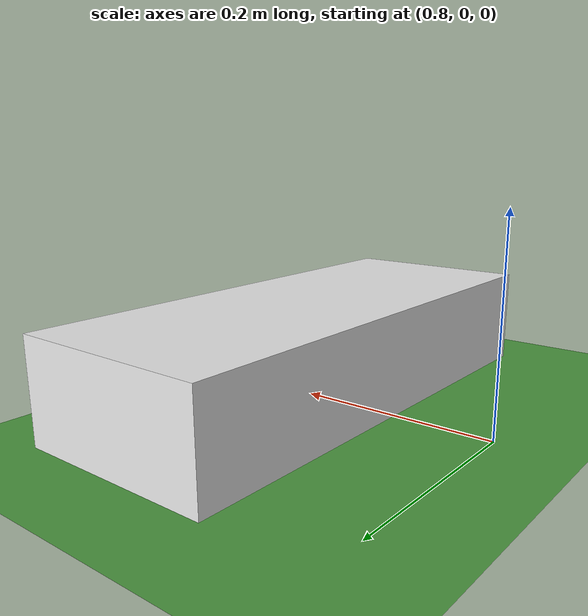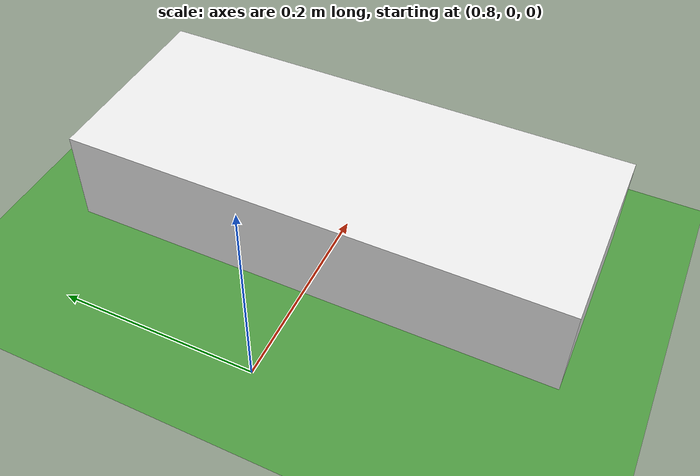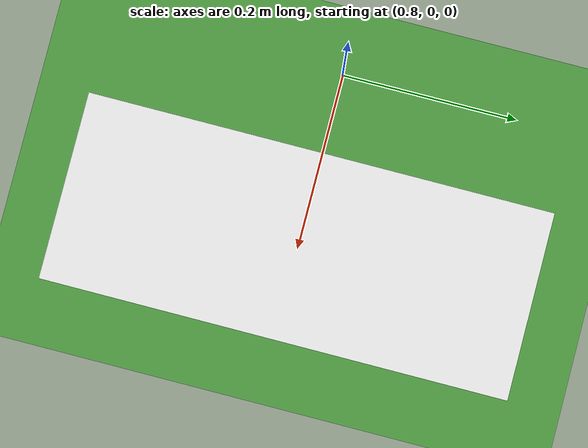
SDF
<sdf version="1.6">
 <world name="default">
  <light name="sun" type="directional">
   <pose>0 0 10 0 -0 0</pose>
   <diffuse>0.8 0.8 0.8 1</diffuse>
   <specular>0.2 0.2 0.2 1</specular>
   <attenuation>
    <range>1000</range>
    <constant>0.9</constant>
    <linear>0.01</linear>
    <quadratic>0.001</quadratic>
   </attenuation>
   <direction>-0.5 0.1 -0.9</direction>
  </light>
  <model name="ground_plane">
   <static>1</static>
   <link name="link">
    <collision name="collision">
     <geometry><plane><normal>0 0 1</normal><size>20 20</size></plane></geometry>
     <surface><friction><ode><mu>100</mu><mu2>50</mu2></ode></friction></surface>
    </collision>
    <visual name="visual">
     <cast_shadows>0</cast_shadows>
     <geometry><plane><normal>0 0 1</normal><size>20 20</size></plane></geometry>
     <material>
      <script><uri>file://media/materials/scripts/gazebo.material</uri><name>Gazebo/Grass</name></script>
     </material>
    </visual>
   </link>
  </model>
  <model name="flat_plate">
   <pose>1 0 0.05 0 0 1.57</pose>
   <link name="link">
    <inertial>
     <mass>1.0</mass>
     <inertia>
      <ixx>0.0833</ixx>
      <ixy>0.0</ixy>
      <ixz>0.0</ixz>
      <iyy>0.0417</iyy>
      <iyz>0.0</iyz>
      <izz>0.0833</izz>
     </inertia>
    </inertial>
    <visual name="visual">
     <geometry><box><size>0.5 0.2 0.1</size></box></geometry>
     <material>
      <script><uri>file://media/materials/scripts/gazebo.material</uri><name>Gazebo/White</name></script>
      <ambient>1 1 1 1</ambient>
      <texture><diffuse>/home/hsr/Workspace/1.png</diffuse></texture>
     </material>
     <meta><layer>0</layer></meta>
    </visual>
    <collision name="collision"><geometry><box><size>0.5 0.5 0.3</size></box></geometry></collision>
   </link>
  </model>
  <gravity>0 0 -9.8</gravity>
  <magnetic_field>6e-06 2.3e-05 -4.2e-05</magnetic_field>
  <atmosphere type="adiabatic"/>
  <physics name="default_physics" default="0" type="ode">
   <max_step_size>0.001</max_step_size>
   <real_time_factor>1</real_time_factor>
   <real_time_update_rate>1000</real_time_update_rate>
  </physics>
  <scene><ambient>0.4 0.4 0.4 1</ambient><background>0.7 0.7 0.7 1</background><shadows>1</shadows></scene>
  <spherical_coordinates>
   <surface_model>EARTH_WGS84</surface_model>
   <latitude_deg>35.7222542</latitude_deg>
   <longitude_deg>-120.7665102</longitude_deg>
   <elevation>280</elevation>
  </spherical_coordinates>
 </world>
</sdf>
